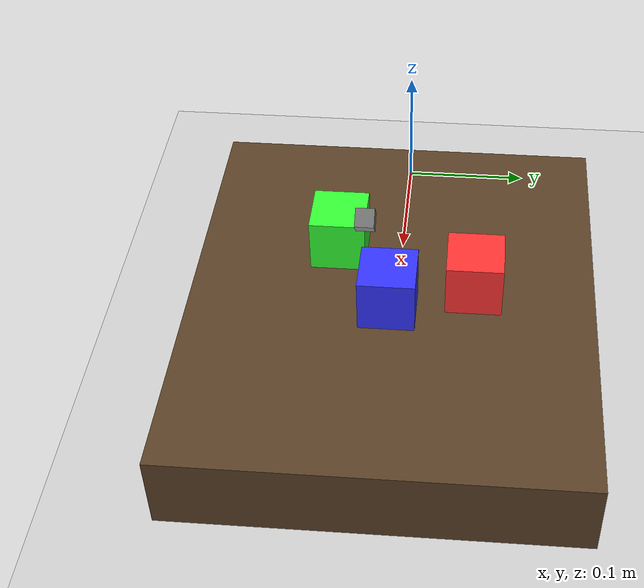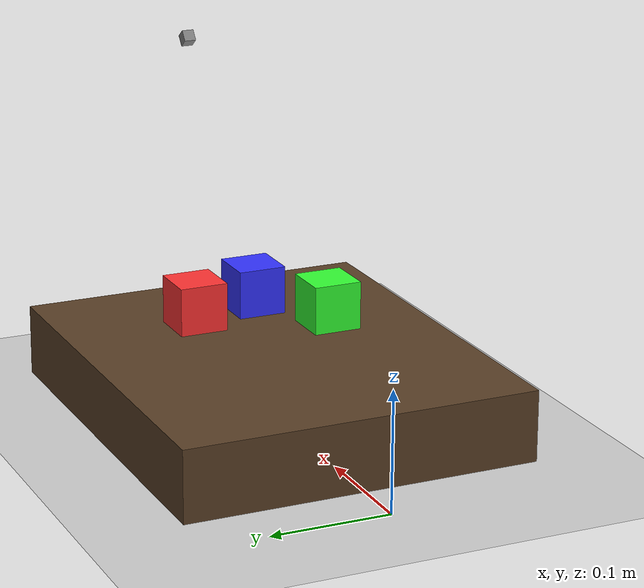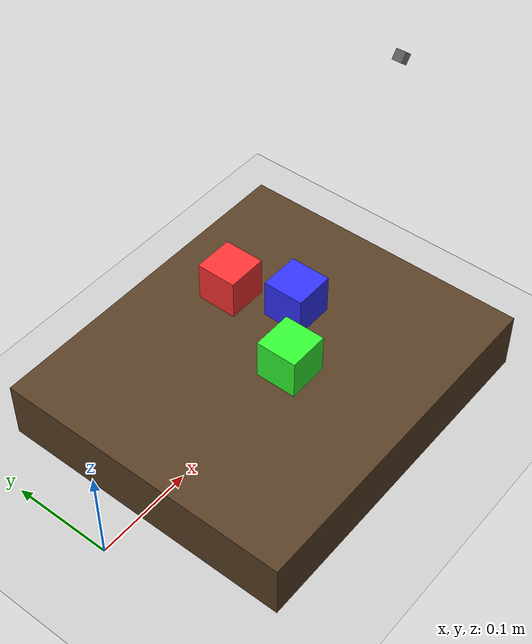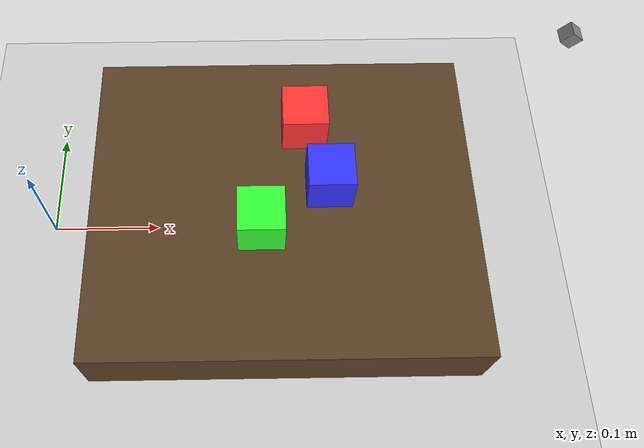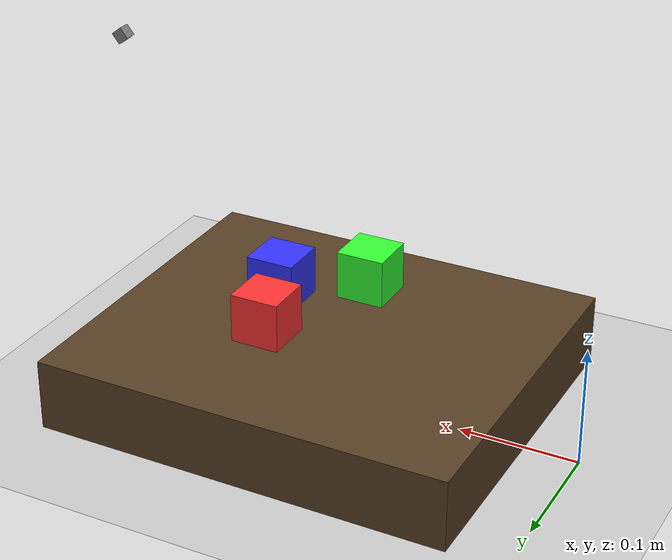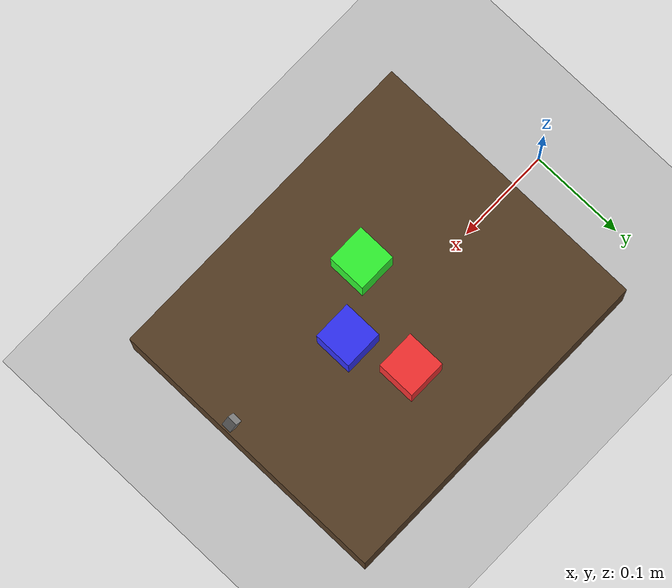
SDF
<?xml version="1.0"?>
<sdf version="1.9">
  <world name="workspace">

    <plugin filename="gz-sim-physics-system" name="gz::sim::systems::Physics">
    </plugin>
    <plugin filename="gz-sim-user-commands-system" name="gz::sim::systems::UserCommands">
    </plugin>
    <plugin filename="gz-sim-scene-broadcaster-system" name="gz::sim::systems::SceneBroadcaster">
    </plugin>
    <plugin filename="gz-sim-sensors-system" name="gz::sim::systems::Sensors">
      <render_engine>ogre2</render_engine>
    </plugin>

    <scene>
      <ambient>0.4 0.4 0.4 1.0</ambient>
      <background>0.7 0.7 0.7 1.0</background>
    </scene>
    <light type="directional" name="sun">
      <direction>-0.5 -0.3 -1.0</direction>
      <diffuse>0.8 0.8 0.7 1.0</diffuse>
      <specular>0.3 0.3 0.3 1.0</specular>
    </light>
    <!-- Ground -->
    <model name="ground">
      <static>true</static>
      <link name="link">
        <collision name="collision">
          <geometry>
            <plane><normal>0 0 1</normal></plane>
          </geometry>
        </collision>
        <visual name="visual">
          <geometry>
            <plane>
              <normal>0 0 1</normal>
              <size>100 100</size>
            </plane>
          </geometry>
          <material>
            <ambient>0.8 0.8 0.8 1</ambient>
            <diffuse>0.8 0.8 0.8 1</diffuse>
          </material>
        </visual>
      </link>
    </model>

    <!-- Table: clear of arm base_link (cylinder r=0.04 at x=0).
         Table near edge at x=0.22-0.175=0.045 > 0.04 (arm max x). -->
    <model name="table">
      <static>true</static>
      <pose>0.22 0 0.03 0 0 0</pose>
      <link name="table_link">
        <visual name="visual">
          <geometry><box><size>0.35 0.30 0.06</size></box></geometry>
          <material>
            <ambient>0.35 0.25 0.15 1.0</ambient>
            <diffuse>0.35 0.25 0.15 1.0</diffuse>
          </material>
        </visual>
        <collision name="collision">
          <geometry><box><size>0.35 0.30 0.06</size></box></geometry>
        </collision>
      </link>
    </model>

    <!-- Blocks: 0.04 m cubes, dropped from ~24 mm above table surface -->
    <model name="red_block">
      <pose>0.24 0.06 0.10 0 0 0</pose>
      <link name="block_link">
        <visual name="visual">
          <geometry><box><size>0.04 0.04 0.04</size></box></geometry>
          <material>
            <ambient>1.0 0.2 0.2 1.0</ambient>
            <diffuse>1.0 0.2 0.2 1.0</diffuse>
          </material>
        </visual>
        <collision name="collision">
          <geometry><box><size>0.04 0.04 0.04</size></box></geometry>
        </collision>
        <inertial>
          <mass>0.05</mass>
          <inertia>
            <ixx>1.33e-05</ixx><ixy>0</ixy><ixz>0</ixz>
            <iyy>1.33e-05</iyy><iyz>0</iyz>
            <izz>1.33e-05</izz>
          </inertia>
        </inertial>
      </link>
    </model>

    <model name="green_block">
      <pose>0.20 -0.04 0.10 0 0 0</pose>
      <link name="block_link">
        <visual name="visual">
          <geometry><box><size>0.04 0.04 0.04</size></box></geometry>
          <material>
            <ambient>0.2 1.0 0.2 1.0</ambient>
            <diffuse>0.2 1.0 0.2 1.0</diffuse>
          </material>
        </visual>
        <collision name="collision">
          <geometry><box><size>0.04 0.04 0.04</size></box></geometry>
        </collision>
        <inertial>
          <mass>0.05</mass>
          <inertia>
            <ixx>1.33e-05</ixx><ixy>0</ixy><ixz>0</ixz>
            <iyy>1.33e-05</iyy><iyz>0</iyz>
            <izz>1.33e-05</izz>
          </inertia>
        </inertial>
      </link>
    </model>

    <model name="blue_block">
      <pose>0.26 0.00 0.10 0 0 0</pose>
      <link name="block_link">
        <visual name="visual">
          <geometry><box><size>0.04 0.04 0.04</size></box></geometry>
          <material>
            <ambient>0.2 0.2 1.0 1.0</ambient>
            <diffuse>0.2 0.2 1.0 1.0</diffuse>
          </material>
        </visual>
        <collision name="collision">
          <geometry><box><size>0.04 0.04 0.04</size></box></geometry>
        </collision>
        <inertial>
          <mass>0.05</mass>
          <inertia>
            <ixx>1.33e-05</ixx><ixy>0</ixy><ixz>0</ixz>
            <iyy>1.33e-05</iyy><iyz>0</iyz>
            <izz>1.33e-05</izz>
          </inertia>
        </inertial>
      </link>
    </model>

    <!-- Front camera: angled view of the workspace -->
    <model name="cam_front">
      <static>true</static>
      <pose>0.40 0 0.28 0 0.9 3.14</pose>
      <link name="camera_link">
        <visual name="visual">
          <geometry><box><size>0.01 0.01 0.01</size></box></geometry>
          <material><ambient>0.5 0.5 0.5 1</ambient></material>
        </visual>
        <collision name="collision">
          <geometry><box><size>0.01 0.01 0.01</size></box></geometry>
        </collision>
        <sensor name="camera" type="camera">
          <always_on>true</always_on>
          <visualize>true</visualize>
          <update_rate>30</update_rate>
          <camera>
            <horizontal_fov>1.0453</horizontal_fov>
            <image>
              <width>640</width>
              <height>480</height>
              <format>R8G8B8</format>
            </image>
            <clip>
              <near>0.01</near>
              <far>10.0</far>
            </clip>
          </camera>
        </sensor>
      </link>
    </model>

  </world>
</sdf>
